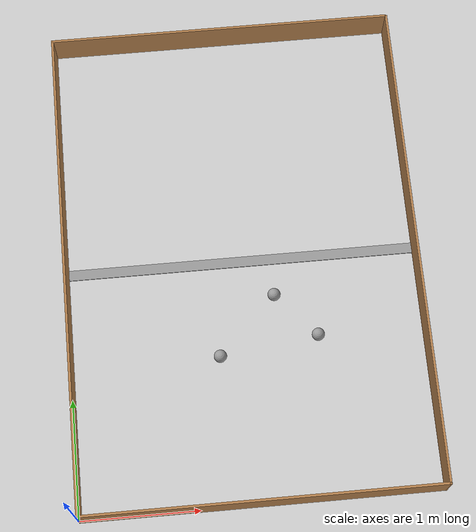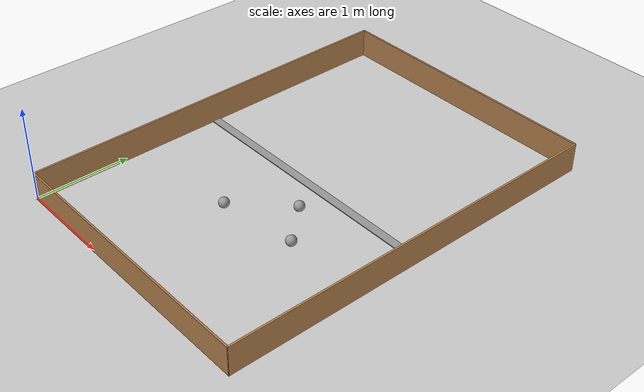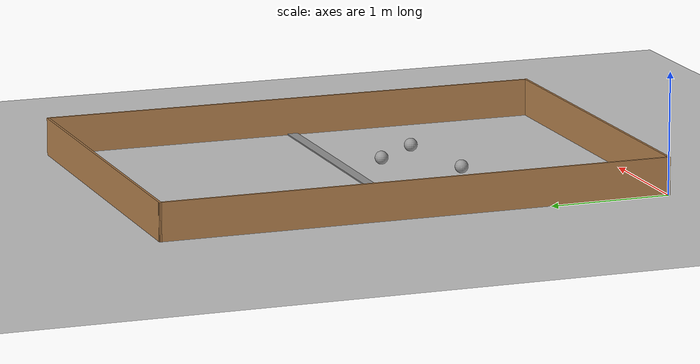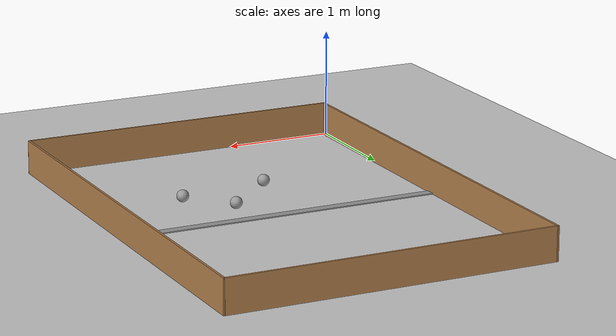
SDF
<sdf version="1.7">
 <world name="default">
  <light name="sun" type="directional">
   <pose>0 0 10 0 -0 0</pose>
   <diffuse>0.8 0.8 0.8 1</diffuse>
   <specular>0.2 0.2 0.2 1</specular>
   <attenuation>
    <range>1000</range>
    <constant>0.9</constant>
    <linear>0.01</linear>
    <quadratic>0.001</quadratic>
   </attenuation>
   <direction>-0.5 0.1 -0.9</direction>
   <spot><inner_angle>0</inner_angle><outer_angle>0</outer_angle><falloff>0</falloff></spot>
  </light>
  <model name="ground_plane">
   <static>1</static>
   <link name="link">
    <collision name="collision">
     <geometry><plane><normal>0 0 1</normal><size>100 100</size></plane></geometry>
     <surface>
      <contact><collide_bitmask>65535</collide_bitmask></contact>
      <friction><ode><mu>100</mu><mu2>50</mu2></ode></friction>
     </surface>
    </collision>
    <visual name="visual">
     <cast_shadows>0</cast_shadows>
     <geometry><plane><normal>0 0 1</normal><size>100 100</size></plane></geometry>
     <material>
      <script><uri>file://media/materials/scripts/gazebo.material</uri><name>Gazebo/Grey</name></script>
     </material>
    </visual>
   </link>
  </model>
  <gravity>0 0 -9.8</gravity>
  <magnetic_field>6e-06 2.3e-05 -4.2e-05</magnetic_field>
  <atmosphere type="adiabatic"/>
  <physics type="ode">
   <max_step_size>0.001</max_step_size>
   <real_time_factor>1</real_time_factor>
   <real_time_update_rate>1000</real_time_update_rate>
  </physics>
  <scene><ambient>0.4 0.4 0.4 1</ambient><background>0.7 0.7 0.7 1</background><shadows>1</shadows></scene>
  <spherical_coordinates>
   <surface_model>EARTH_WGS84</surface_model>
   <latitude_deg>0</latitude_deg>
   <longitude_deg>0</longitude_deg>
   <elevation>0</elevation>
   <heading_deg>0</heading_deg>
  </spherical_coordinates>
  <model name="DEBI_world">
   <pose>1.5 2.1 0 0 -0 0</pose>
   <link name="Wall_12">
    <collision name="Wall_12_Collision">
     <geometry><box><size>2.997 0.02 0.31</size></box></geometry>
     <pose>0 0 0.155 0 -0 0</pose>
    </collision>
    <visual name="Wall_12_Visual">
     <pose>0 0 0.155 0 -0 0</pose>
     <geometry><box><size>2.997 0.02 0.31</size></box></geometry>
     <material>
      <script><uri>file://media/materials/scripts/gazebo.material</uri><name>Gazebo/Wood</name></script>
      <ambient>1 1 1 1</ambient>
     </material>
     <meta><layer>0</layer></meta>
    </visual>
    <pose>0.007012 -2.1035 0 0 -0 0.001008</pose>
   </link>
   <link name="Wall_16">
    <collision name="Wall_16_Collision">
     <geometry><box><size>4.23002 0.02 0.31</size></box></geometry>
     <pose>0 0 0.155 0 -0 0</pose>
    </collision>
    <visual name="Wall_16_Visual">
     <pose>0 0 0.155 0 -0 0</pose>
     <geometry><box><size>4.23002 0.02 0.31</size></box></geometry>
     <material>
      <script><uri>file://media/materials/scripts/gazebo.material</uri><name>Gazebo/Wood</name></script>
      <ambient>1 1 1 1</ambient>
     </material>
     <meta><layer>0</layer></meta>
    </visual>
    <pose>-1.48849 0 0 0 -0 1.57412</pose>
   </link>
   <link name="Wall_18">
    <collision name="Wall_18_Collision">
     <geometry><box><size>4.22 0.02 0.31</size></box></geometry>
     <pose>0 0 0.155 0 -0 0</pose>
    </collision>
    <visual name="Wall_18_Visual">
     <pose>0 0 0.155 0 -0 0</pose>
     <geometry><box><size>4.22 0.02 0.31</size></box></geometry>
     <material>
      <script><uri>file://media/materials/scripts/gazebo.material</uri><name>Gazebo/Wood</name></script>
      <ambient>1 1 1 1</ambient>
     </material>
     <meta><layer>0</layer></meta>
    </visual>
    <pose>1.49551 -0.002 0 0 -0 1.5708</pose>
   </link>
   <link name="Wall_20">
    <collision name="Wall_20_Collision">
     <geometry><box><size>3 0.02 0.31</size></box></geometry>
     <pose>0 0 0.155 0 -0 0</pose>
    </collision>
    <visual name="Wall_20_Visual">
     <pose>0 0 0.155 0 -0 0</pose>
     <geometry><box><size>3 0.02 0.31</size></box></geometry>
     <material>
      <script><uri>file://media/materials/scripts/gazebo.material</uri><name>Gazebo/Wood</name></script>
      <ambient>1 1 1 1</ambient>
     </material>
     <meta><layer>0</layer></meta>
    </visual>
    <pose>-0.005488 2.105 0 0 -0 0</pose>
   </link>
   <link name="Wall_22">
    <collision name="Wall_22_Collision">
     <geometry><box><size>3 0.09 0.01</size></box></geometry>
     <pose>0 0 0.005 0 -0 0</pose>
    </collision>
    <visual name="Wall_22_Visual">
     <pose>0 0 0.005 0 -0 0</pose>
     <geometry><box><size>3 0.09 0.01</size></box></geometry>
     <material>
      <script><uri>file://media/materials/scripts/gazebo.material</uri><name>Gazebo/Grey</name></script>
      <ambient>1 1 1 1</ambient>
     </material>
     <meta><layer>0</layer></meta>
    </visual>
    <pose>0.004512 -0.005 0 0 -0 0</pose>
   </link>
   <static>1</static>
  </model>
  <model name="DEBI_world_1">
   <link name="link_2">
    <inertial>
     <mass>0.005</mass>
     <inertia>
      <ixx>6.05e-06</ixx>
      <ixy>0</ixy>
      <ixz>0</ixz>
      <iyy>6.05e-06</iyy>
      <iyz>0</iyz>
      <izz>6.05e-06</izz>
     </inertia>
    </inertial>
    <pose>1 1 0.055 0 -0 0</pose>
    <visual name="visual">
     <geometry><sphere><radius>0.055</radius></sphere></geometry>
     <material>
      <lighting>1</lighting>
      <script><uri>file://media/materials/scripts/gazebo.material</uri><name>Gazebo/Grey</name></script>
      <shader type="pixel"><normal_map>__default__</normal_map></shader>
      <ambient>0.3 0.3 0.3 1</ambient>
      <diffuse>0.7 0.7 0.7 1</diffuse>
      <specular>0.01 0.01 0.01 1</specular>
      <emissive>0 0 0 1</emissive>
     </material>
    </visual>
    <collision name="collision">
     <geometry><sphere><radius>0.055</radius></sphere></geometry>
     <surface>
      <friction>
       <ode><mu>1</mu><mu2>1</mu2><fdir1>0 0 0</fdir1><slip1>0</slip1><slip2>0</slip2></ode>
       <torsional>
        <coefficient>1</coefficient>
        <patch_radius>0</patch_radius>
        <surface_radius>0</surface_radius>
        <use_patch_radius>1</use_patch_radius>
        <ode><slip>0</slip></ode>
       </torsional>
      </friction>
      <bounce><restitution_coefficient>0</restitution_coefficient><threshold>1e+06</threshold></bounce>
      <contact>
       <collide_without_contact>0</collide_without_contact>
       <collide_without_contact_bitmask>1</collide_without_contact_bitmask>
       <collide_bitmask>1</collide_bitmask>
       <ode>
        <soft_cfm>0</soft_cfm>
        <soft_erp>0.2</soft_erp>
        <kp>1e+13</kp>
        <kd>1</kd>
        <max_vel>0.01</max_vel>
        <min_depth>0</min_depth>
       </ode>
       <bullet>
        <split_impulse>1</split_impulse>
        <split_impulse_penetration_threshold>-0.01</split_impulse_penetration_threshold>
        <soft_cfm>0</soft_cfm>
        <soft_erp>0.2</soft_erp>
        <kp>1e+13</kp>
        <kd>1</kd>
       </bullet>
      </contact>
     </surface>
    </collision>
   </link>
   <link name="link_2_clone">
    <inertial>
     <mass>0.005</mass>
     <inertia>
      <ixx>6.05e-06</ixx>
      <ixy>0</ixy>
      <ixz>0</ixz>
      <iyy>6.05e-06</iyy>
      <iyz>0</iyz>
      <izz>6.05e-06</izz>
     </inertia>
    </inertial>
    <pose>1.5 1.5 0.055 0 -0 0</pose>
    <visual name="visual">
     <geometry><sphere><radius>0.055</radius></sphere></geometry>
     <material>
      <lighting>1</lighting>
      <script><uri>file://media/materials/scripts/gazebo.material</uri><name>Gazebo/Grey</name></script>
      <shader type="pixel"><normal_map>__default__</normal_map></shader>
      <ambient>0.3 0.3 0.3 1</ambient>
      <diffuse>0.7 0.7 0.7 1</diffuse>
      <specular>0.01 0.01 0.01 1</specular>
      <emissive>0 0 0 1</emissive>
     </material>
    </visual>
    <collision name="collision">
     <geometry><sphere><radius>0.055</radius></sphere></geometry>
     <surface>
      <friction>
       <ode><mu>1</mu><mu2>1</mu2><fdir1>0 0 0</fdir1><slip1>0</slip1><slip2>0</slip2></ode>
       <torsional>
        <coefficient>1</coefficient>
        <patch_radius>0</patch_radius>
        <surface_radius>0</surface_radius>
        <use_patch_radius>1</use_patch_radius>
        <ode><slip>0</slip></ode>
       </torsional>
      </friction>
      <bounce><restitution_coefficient>0</restitution_coefficient><threshold>1e+06</threshold></bounce>
      <contact>
       <collide_without_contact>0</collide_without_contact>
       <collide_without_contact_bitmask>1</collide_without_contact_bitmask>
       <collide_bitmask>1</collide_bitmask>
       <ode>
        <soft_cfm>0</soft_cfm>
        <soft_erp>0.2</soft_erp>
        <kp>1e+13</kp>
        <kd>1</kd>
        <max_vel>0.01</max_vel>
        <min_depth>0</min_depth>
       </ode>
       <bullet>
        <split_impulse>1</split_impulse>
        <split_impulse_penetration_threshold>-0.01</split_impulse_penetration_threshold>
        <soft_cfm>0</soft_cfm>
        <soft_erp>0.2</soft_erp>
        <kp>1e+13</kp>
        <kd>1</kd>
       </bullet>
      </contact>
     </surface>
    </collision>
   </link>
   <link name="link_2_clone_0">
    <inertial>
     <mass>0.005</mass>
     <inertia>
      <ixx>6.05e-06</ixx>
      <ixy>0</ixy>
      <ixz>0</ixz>
      <iyy>6.05e-06</iyy>
      <iyz>0</iyz>
      <izz>6.05e-06</izz>
     </inertia>
    </inertial>
    <pose>1.83885 1.11845 0.055 0 -0 0</pose>
    <visual name="visual">
     <geometry><sphere><radius>0.055</radius></sphere></geometry>
     <material>
      <lighting>1</lighting>
      <script><uri>file://media/materials/scripts/gazebo.material</uri><name>Gazebo/Grey</name></script>
      <shader type="pixel"><normal_map>__default__</normal_map></shader>
      <ambient>0.3 0.3 0.3 1</ambient>
      <diffuse>0.7 0.7 0.7 1</diffuse>
      <specular>0.01 0.01 0.01 1</specular>
      <emissive>0 0 0 1</emissive>
     </material>
    </visual>
    <collision name="collision">
     <geometry><sphere><radius>0.055</radius></sphere></geometry>
     <surface>
      <friction>
       <ode><mu>1</mu><mu2>1</mu2><fdir1>0 0 0</fdir1><slip1>0</slip1><slip2>0</slip2></ode>
       <torsional>
        <coefficient>1</coefficient>
        <patch_radius>0</patch_radius>
        <surface_radius>0</surface_radius>
        <use_patch_radius>1</use_patch_radius>
        <ode><slip>0</slip></ode>
       </torsional>
      </friction>
      <bounce><restitution_coefficient>0</restitution_coefficient><threshold>1e+06</threshold></bounce>
      <contact>
       <collide_without_contact>0</collide_without_contact>
       <collide_without_contact_bitmask>1</collide_without_contact_bitmask>
       <collide_bitmask>1</collide_bitmask>
       <ode>
        <soft_cfm>0</soft_cfm>
        <soft_erp>0.2</soft_erp>
        <kp>1e+13</kp>
        <kd>1</kd>
        <max_vel>0.01</max_vel>
        <min_depth>0</min_depth>
       </ode>
       <bullet>
        <split_impulse>1</split_impulse>
        <split_impulse_penetration_threshold>-0.01</split_impulse_penetration_threshold>
        <soft_cfm>0</soft_cfm>
        <soft_erp>0.2</soft_erp>
        <kp>1e+13</kp>
        <kd>1</kd>
       </bullet>
      </contact>
     </surface>
    </collision>
   </link>
   <static>0</static>
   <pose>0.25805 0.261696 0 0 -0 0</pose>
  </model>
 </world>
</sdf>
